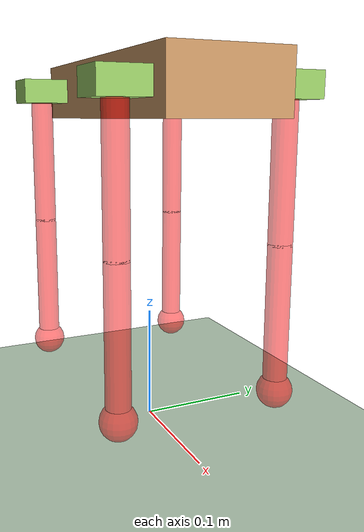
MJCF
<mujoco model="cheetah">
<compiler angle="radian" coordinate="local" inertiafromgeom="false"/>

<default>
    <joint armature="0.01936" stiffness="0"/>
    <geom conaffinity="0" condim="3" contype="1" friction="1.5 .1 .1" rgba="0.8 0.6 .4 1"/>
    <position forcelimited="true"/>
</default>

<size nstack="300000" nuser_geom="1"/>

<asset>
    <texture builtin="gradient" height="100" rgb1="1 1 1" rgb2="0 0 0" type="skybox" width="100"/>
    <texture builtin="flat" height="1278" mark="cross" markrgb="1 1 1" name="texgeom" random="0.01" rgb1="0.8 0.6 0.4" rgb2="0.8 0.6 0.4" type="cube" width="127"/>
    <texture builtin="checker" height="100" name="texplane" rgb1="0 0 0" rgb2="0.8 0.8 0.8" type="2d" width="100"/>
    <material name="MatPlane" reflectance="0.5" shininess="1" specular="1" texrepeat="60 60" texture="texplane"/>
    <material name="geom" texture="texgeom" texuniform="true"/>
</asset>

<worldbody>
    <geom conaffinity="1" condim="3" material="MatPlane" name="floor" pos="0 0 0" rgba="0.8 0.9 0.8 1" size="40 40 40" type="plane"/>
    <body name="trunk" pos="0 0 0.3">
        <inertial pos="0 0 0" mass="0.56" diaginertia="0.0005532 0.0037619999999999997 0.004011000000000001"/>
        <geom pos="0 0 0" name="torso" size="0.138 0.05 0.025" type="box"/>
        <site name="imu_site" pos="0 0 0" size=".01 .01 .01" type="box"/>

        <body name="fr_shoulder" pos="0.1 -0.04 0">
            <geom pos="0 -0.0132 0" name="fr_block" type="box" size="0.0197 0.0372 0.0107" rgba="0.6 0.8 .4 1"/>
            <joint axis="1 0 0" name="fr_x_joint" pos="0 0 0" limited="true" range="-1.57 1.57" type="hinge" damping="1.049"/>
            <inertial pos="0 0 0" mass="0.08" diaginertia="3.698e-05 7.127e-06 4.075e-05"/>
            <body name="fr_thigh" pos="0 -0.03 0">
                <joint axis="0 1 0" name="fr_y_joint" pos="0 0 0" limited="true" range="-1.57 1.57" type="hinge" damping="1.049"/>
                <inertial pos="0 0 0" mass="0.03" diaginertia="1.3020833333333332e-05 1.3020833333333332e-05 1e-06"/>
                <geom axisangle="0 1 0 0" name="fr" fromto="0 0 0 0 0 -0.125" size="0.01" type="capsule" rgba = "1 0 0 0.5" density="50"/>
                <body name="fr_calf" pos="0 0 -0.1235">
                    <joint axis="0 1 0" name="fr_y2_joint" pos="0 0 0" limited="true" range="-3.14 0.0" type="hinge" damping="1.049"/>
                    <inertial pos="0 0 0" mass="0.03" diaginertia="1.3020833333333332e-05 1.3020833333333332e-05 1e-06"/>
                    <geom axisangle="0 1 0 0" name="fr_l2" fromto="0 0 0 0 0 -0.125" size="0.01" type="capsule" rgba="1 0 0 0.5" density="50"/>
                    <body name="fr_foot" pos="0 0 -0.125">
                        <geom name="fr_foot" size="0.015" type="sphere" rgba="1 0 0 0.5" density="50"/>
                    </body>
                </body>
            </body>
        </body>

        <body name="fl_shoulder" pos="0.1 0.04 0">
            <geom pos = "0 0.0132 0" name="fl_block" type="box" size="0.0197 0.0372 0.0107" rgba="0.6 0.8 .4 1"/>
            <joint axis="1 0 0" name="fl_x_joint" pos="0 0 0" limited="true" range="-1.57 1.57" type="hinge" damping="1.049"/>
            <inertial pos="0 0 0" mass="0.08" diaginertia="3.698e-05 7.127e-06 4.075e-05"/>
            <body name="fl_thigh" pos="0 0.03 0">
                <joint axis="0 1 0" name="fl_y_joint" pos="0 0 0" limited="true" range="-1.57 1.57" type="hinge" damping="1.049"/>
                <inertial pos="0 0 0" mass="0.03" diaginertia="1.3020833333333332e-05 1.3020833333333332e-05 1e-06"/>
                <geom axisangle="0 1 0 0" name="fl" fromto="0 0 0 0 0 -0.125" size="0.01" type="capsule" rgba = "1 0 0 0.5" density="50"/>
                <body name="fl_calf" pos="0 0 -0.1235">
                    <joint axis="0 1 0" name="fl_y2_joint" pos="0 0 0" limited="true" range="-3.14 0.0" type="hinge" damping="1.049"/>
                    <inertial pos="0 0 0" mass="0.03" diaginertia="1.3020833333333332e-05 1.3020833333333332e-05 1e-06"/>
                    <geom axisangle="0 1 0 0" name="fl_l2" fromto="0 0 0 0 0 -0.125" size="0.01" type="capsule" rgba="1 0 0 0.5" density="50"/>
                    <body name="fl_foot" pos="0 0 -0.125">
                        <geom name="fl_foot" size="0.015" type="sphere" rgba="1 0 0 0.5" density="50"/>
                    </body>
                </body>
            </body>
        </body>

        <body name="br_shoulder" pos="-0.1 -0.04 0">
            <geom pos = "0 -0.0132 0" name="br_block" type="box" size="0.0197 0.0372 0.0107" rgba="0.6 0.8 .4 1"/>
            <joint axis="1 0 0" name="br_x_joint" pos="0 0 0" limited="true" range="-1.57 1.57" type="hinge" damping="1.049"/>
            <inertial pos="0 0 0" mass="0.08" diaginertia="3.698e-05 7.127e-06 4.075e-05"/>
            <body name="br_thigh" pos="0 -0.03 0">
                <joint axis="0 1 0" name="br_y_joint" pos="0 0 0" limited="true" range="-1.57 1.57" type="hinge" damping="1.049"/>
                <inertial pos="0 0 0" mass="0.03" diaginertia="1.3020833333333332e-05 1.3020833333333332e-05 1e-06"/>
                <geom axisangle="0 1 0 0" name="br" fromto="0 0 0 0 0 -0.125" size="0.01" type="capsule" rgba = "1 0 0 0.5" density="50"/>
                <body name="br_calf" pos="0 0 -0.1235">
                    <joint axis="0 1 0" name="br_y2_joint" pos="0 0 0" limited="true" range="-3.14 0.0" type="hinge" damping="1.049"/>
                    <inertial pos="0 0 0" mass="0.03" diaginertia="1.3020833333333332e-05 1.3020833333333332e-05 1e-06"/>
                    <geom axisangle="0 1 0 0" name="br_l2" fromto="0 0 0 0 0 -0.125" size="0.01" type="capsule" rgba="1 0 0 0.5" density="50"/>
                    <body name="br_foot" pos="0 0 -0.125">
                        <geom name="br_foot" size="0.015" type="sphere" rgba="1 0 0 0.5" density="50"/>
                    </body>
                </body>
            </body>
        </body>

        <body name="bl_shoulder" pos="-0.1 0.04 0">
            <geom pos = "0 0.0132 0" name="bl_block" type="box" size="0.0197 0.0372 0.0107" rgba="0.6 0.8 .4 1"/>
            <joint axis="1 0 0" name="bl_x_joint" pos="0 0 0" limited="true" range="-1.57 1.57" type="hinge" damping="1.049"/>
            <inertial pos="0 0 0" mass="0.08" diaginertia="3.698e-05 7.127e-06 4.075e-05"/>
            <body name="bl_thigh" pos="0 0.03 0">
                <joint axis="0 1 0" name="bl_y_joint" pos="0 0 0" limited="true" range="-1.57 1.57" type="hinge" damping="1.049"/>
                <inertial pos="0 0 0" mass="0.03" diaginertia="1.3020833333333332e-05 1.3020833333333332e-05 1e-06"/>
                <geom axisangle="0 1 0 0" name="bl" fromto="0 0 0 0 0 -0.125" size="0.01" type="capsule" rgba = "1 0 0 0.5" density="50"/>
                <body name="bl_calf" pos="0 0 -0.1235">
                    <joint axis="0 1 0" name="bl_y2_joint" pos="0 0 0" limited="true" range="-3.14 0.0" type="hinge" damping="1.049"/>
                    <inertial pos="0 0 0" mass="0.03" diaginertia="1.3020833333333332e-05 1.3020833333333332e-05 1e-06"/>
                    <geom axisangle="0 1 0 0" name="bl_l2" fromto="0 0 0 0 0 -0.125" size="0.01" type="capsule" rgba="1 0 0 0.5" density="50"/>
                    <body name="bl_foot" pos="0 0 -0.125">
                        <geom name="bl_foot" size="0.015" type="sphere" rgba="1 0 0 0.5" density="50"/>
                    </body>
                </body>
            </body>
        </body>
    </body>
</worldbody>

<actuator>
    <position gear="1" joint="fr_x_joint" name="fr_x_joint" kp="300" forcerange="-6.0 6.0"/>
    <position gear="1" joint="fr_y_joint" name="fr_y_joint" kp="300" forcerange="-6.0 6.0"/>
    <position gear="1" joint="fr_y2_joint" name="fr_y2_joint" kp="300" forcerange="-6.0 6.0"/>

    <position gear="1" joint="fl_x_joint" name="fl_x_joint" kp="300" forcerange="-6.0 6.0"/>
    <position gear="1" joint="fl_y_joint" name="fl_y_joint" kp="300" forcerange="-6.0 6.0"/>
    <position gear="1" joint="fl_y2_joint" name="fl_y2_joint" kp="300" forcerange="-6.0 6.0"/>

    <position gear="1" joint="br_x_joint" name="br_x_joint" kp="300" forcerange="-6.0 6.0"/>
    <position gear="1" joint="br_y_joint" name="br_y_joint" kp="300" forcerange="-6.0 6.0"/>
    <position gear="1" joint="br_y2_joint" name="br_y2_joint" kp="300" forcerange="-6.0 6.0"/>

    <position gear="1" joint="bl_x_joint" name="bl_x_joint" kp="300" forcerange="-6.0 6.0"/>
    <position gear="1" joint="bl_y_joint" name="bl_y_joint" kp="300" forcerange="-6.0 6.0"/>
    <position gear="1" joint="bl_y2_joint" name="bl_y2_joint" kp="300" forcerange="-6.0 6.0"/>
    </actuator>
</mujoco>
